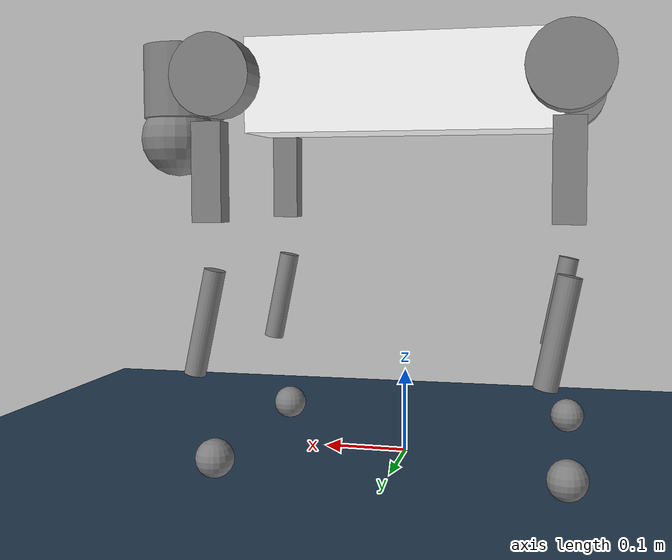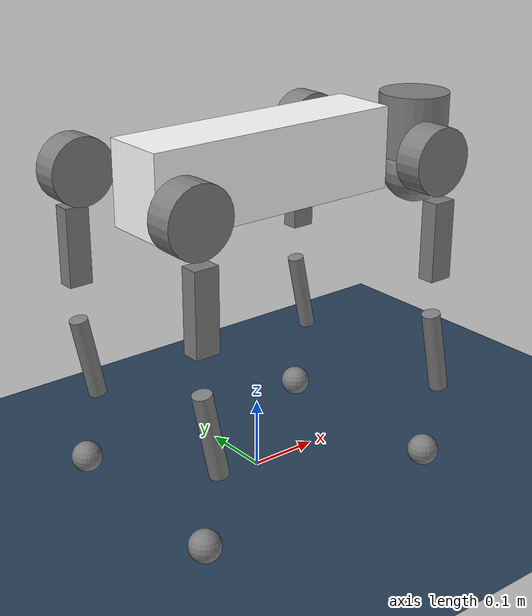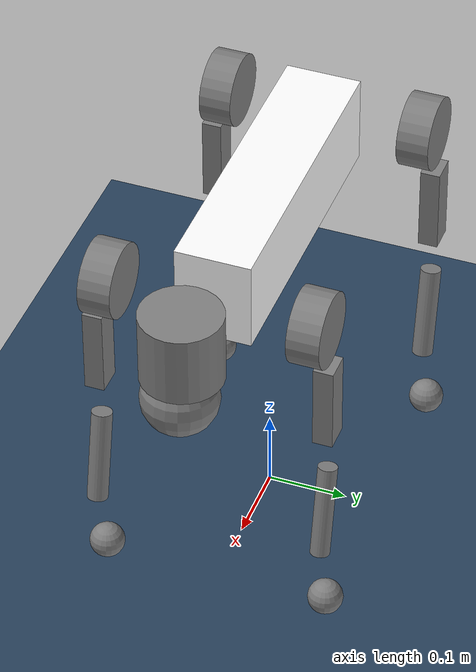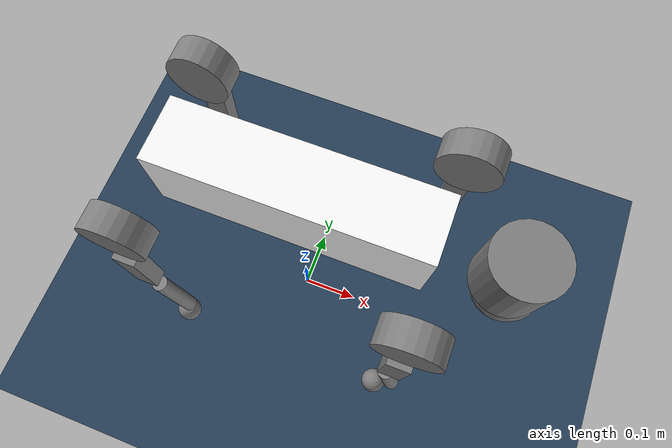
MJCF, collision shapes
<mujoco model="go2_description">
  <compiler angle="radian" meshdir="../mujoco_meshes/" autolimits="true"/>

  <option timestep="0.005" gravity="0 0 -9.81"/>

  <default>
    <joint damping="0.001" armature="0.01" frictionloss="0.1"/>
    <default class="visual">
      <geom type="mesh" contype="0" conaffinity="0" group="2"/>
    </default>
  </default>

  <asset>
    <mesh name="base" file="base.stl"/>
    <mesh name="hip" file="hip.stl"/>
    <mesh name="thigh" file="thigh.stl"/>
    <mesh name="calf" file="calf.stl"/>
    <mesh name="foot" file="foot.stl"/>
    <mesh name="thigh_mirror" file="thigh_mirror.stl"/>
    <mesh name="calf_mirror" file="calf_mirror.stl"/>
    <texture name="grid" type="2d" builtin="checker" rgb1=".1 .2 .3" rgb2=".2 .3 .4" width="300" height="300" mark="edge" markrgb=".8 .8 .8"/>
    <material name="grid_mat" texture="grid" texrepeat="2 2" texuniform="true"/>
  </asset>

  <worldbody>
    <geom name="floor" type="plane" size="0 0 .05" material="grid_mat" friction="1.0 0.005 0.0001"/>

    <body name="base" pos="0 0 0.445">
      <inertial pos="0.021112 0 -0.005366" quat="-0.000543471 0.713435 -0.00173769 0.700719"
        mass="6.921"
        diaginertia="0.107027 0.0980771 0.0244531" />
      <freejoint name="root"/> <geom type="mesh" contype="0" conaffinity="0" group="0" density="0" rgba="1 1 1 1" mesh="base"/>
      <geom name="base_box" size="0.1881 0.04675 0.057" type="box" rgba="1 1 1 1"/>
      <geom name="base_cyl1" size="0.05 0.045" pos="0.285 0 0.01" type="cylinder"/>
      <geom name="base_sphere1" size="0.047" pos="0.293 0 -0.06" type="sphere"/>

      <site name="imu_site" pos="-0.02557 0 0.04232"/>
      <camera name="front_depth_camera" pos="0.28 0 0" fovy="60" ipd="0.06"/>

      <body name="FL_hip" pos="0.1934 0.0465 0">
        <inertial pos="-0.0054 0.00194 -0.000105" quat="0.497014 0.499245 0.505462 0.498237" mass="0.678" diaginertia="0.00088403 0.000596003 0.000479967"/>
        <joint name="FL_hip_joint" pos="0 0 0" axis="1 0 0" range="-1.0472 1.0472"/>
        <geom type="mesh" class="visual" mesh="hip"/>
        <geom size="0.046 0.02" pos="0 0.08 0" quat="0.707107 0.707107 0 0" type="cylinder"/>
        <body name="FL_thigh" pos="0 0.0955 0">
          <inertial pos="-0.00374 -0.0223 -0.0327" quat="0.829533 0.0847635 -0.0200632 0.551623" mass="1.152" diaginertia="0.00594973 0.00584149 0.000878787"/>
          <joint name="FL_thigh_joint" pos="0 0 0" axis="0 1 0" range="-1.5708 3.4907"/>
          <geom type="mesh" class="visual" mesh="thigh"/>
          <geom size="0.055 0.01225 0.017" pos="0 0 -0.1065" quat="0.707107 0 0.707107 0" type="box"/>
          <body name="FL_calf" pos="0 0 -0.213">
            <site name="FL_foot_site" pos="0 0 -0.213" size="0.01"/>
            <inertial pos="0.00629595 -0.000622121 -0.141417" quat="0.710749 0.00140574 -0.00463741 0.703429" mass="0.241352" diaginertia="0.0014901 0.00146367 5.30286e-05"/>
            <joint name="FL_calf_joint" pos="0 0 0" axis="0 1 0" range="-2.7227 -0.83776"/>
            <geom type="mesh" class="visual" mesh="calf"/>
            <geom size="0.012 0.06" pos="0.008 0 -0.06" quat="0.994493 0 -0.104807 0" type="cylinder"/>
            <geom pos="0 0 -0.213" type="mesh" class="visual" mesh="foot"/>
            <geom size="0.022" pos="-0.002 0 -0.213" friction="0.8" condim="3"/>
          </body>
        </body>
      </body>

      <body name="FR_hip" pos="0.1934 -0.0465 0">
        <inertial pos="-0.0054 -0.00194 -0.000105" quat="0.498237 0.505462 0.499245 0.497014" mass="0.678" diaginertia="0.00088403 0.000596003 0.000479967"/>
        <joint name="FR_hip_joint" pos="0 0 0" axis="1 0 0" range="-1.0472 1.0472"/>
        <geom quat="4.63268e-05 1 0 0" type="mesh" class="visual" mesh="hip"/>
        <geom size="0.046 0.02" pos="0 -0.08 0" quat="0.707107 0.707107 0 0" type="cylinder"/>
        <body name="FR_thigh" pos="0 -0.0955 0">
          <inertial pos="-0.00374 0.0223 -0.0327" quat="0.551623 -0.0200632 0.0847635 0.829533" mass="1.152" diaginertia="0.00594973 0.00584149 0.000878787"/>
          <joint name="FR_thigh_joint" pos="0 0 0" axis="0 1 0" range="-1.5708 3.4907"/>
          <geom type="mesh" class="visual" mesh="thigh_mirror"/>
          <geom size="0.055 0.01225 0.017" pos="0 0 -0.1065" quat="0.707107 0 0.707107 0" type="box"/>
          <body name="FR_calf" pos="0 0 -0.213">
            <site name="FR_foot_site" pos="0 0 -0.213" size="0.01"/>
            <inertial pos="0.00629595 0.000622121 -0.141417" quat="0.703429 -0.00463741 0.00140574 0.710749" mass="0.241352" diaginertia="0.0014901 0.00146367 5.30286e-05"/>
            <joint name="FR_calf_joint" pos="0 0 0" axis="0 1 0" range="-2.7227 -0.83776"/>
            <geom type="mesh" class="visual" mesh="calf_mirror"/>
            <geom size="0.013 0.06" pos="0.01 0 -0.06" quat="0.995004 0 -0.0998334 0" type="cylinder"/>
            <geom pos="0 0 -0.213" type="mesh" class="visual" mesh="foot"/>
            <geom size="0.022" pos="-0.002 0 -0.213" friction="0.8" condim="3"/>
          </body>
        </body>
      </body>

      <body name="RL_hip" pos="-0.1934 0.0465 0">
        <inertial pos="0.0054 0.00194 -0.000105" quat="0.505462 0.498237 0.497014 0.499245" mass="0.678" diaginertia="0.00088403 0.000596003 0.000479967"/>
        <joint name="RL_hip_joint" pos="0 0 0" axis="1 0 0" range="-1.0472 1.0472"/>
        <geom quat="4.63268e-05 0 1 0" type="mesh" class="visual" mesh="hip"/>
        <geom size="0.046 0.02" pos="0 0.08 0" quat="0.707107 0.707107 0 0" type="cylinder"/>
        <body name="RL_thigh" pos="0 0.0955 0">
          <inertial pos="-0.00374 -0.0223 -0.0327" quat="0.829533 0.0847635 -0.0200632 0.551623" mass="1.152" diaginertia="0.00594973 0.00584149 0.000878787"/>
          <joint name="RL_thigh_joint" pos="0 0 0" axis="0 1 0" range="-0.5236 4.5379"/>
          <geom type="mesh" class="visual" mesh="thigh"/>
          <geom size="0.055 0.01225 0.017" pos="0 0 -0.1065" quat="0.707107 0 0.707107 0" type="box"/>
          <body name="RL_calf" pos="0 0 -0.213">
            <site name="RL_foot_site" pos="0 0 -0.213" size="0.01"/>
            <inertial pos="0.00629595 -0.000622121 -0.141417" quat="0.710749 0.00140574 -0.00463741 0.703429" mass="0.241352" diaginertia="0.0014901 0.00146367 5.30286e-05"/>
            <joint name="RL_calf_joint" pos="0 0 0" axis="0 1 0" range="-2.7227 -0.83776"/>
            <geom type="mesh" class="visual" mesh="calf"/>
            <geom size="0.013 0.06" pos="0.01 0 -0.06" quat="0.995004 0 -0.0998334 0" type="cylinder"/>
            <geom pos="0 0 -0.213" type="mesh" class="visual" mesh="foot"/>
            <geom size="0.022" pos="-0.002 0 -0.213" friction="0.8" condim="3"/>
          </body>
        </body>
      </body>

      <body name="RR_hip" pos="-0.1934 -0.0465 0">
        <inertial pos="0.0054 -0.00194 -0.000105" quat="0.499245 0.497014 0.498237 0.505462" mass="0.678" diaginertia="0.00088403 0.000596003 0.000479967"/>
        <joint name="RR_hip_joint" pos="0 0 0" axis="1 0 0" range="-1.0472 1.0472"/>
        <geom quat="2.14617e-09 4.63268e-05 4.63268e-05 -1" type="mesh" class="visual" mesh="hip"/>
        <geom size="0.046 0.02" pos="0 -0.08 0" quat="0.707107 0.707107 0 0" type="cylinder"/>
        <body name="RR_thigh" pos="0 -0.0955 0">
          <inertial pos="-0.00374 0.0223 -0.0327" quat="0.551623 -0.0200632 0.0847635 0.829533" mass="1.152" diaginertia="0.00594973 0.00584149 0.000878787"/>
          <joint name="RR_thigh_joint" pos="0 0 0" axis="0 1 0" range="-0.5236 4.5379"/>
          <geom type="mesh" class="visual" mesh="thigh_mirror"/>
          <geom size="0.055 0.01225 0.017" pos="0 0 -0.1065" quat="0.707107 0 0.707107 0" type="box"/>
          <body name="RR_calf" pos="0 0 -0.213">
            <site name="RR_foot_site" pos="0 0 -0.213" size="0.01"/>
            <inertial pos="0.00629595 0.000622121 -0.141417" quat="0.703429 -0.00463741 0.00140574 0.710749" mass="0.241352" diaginertia="0.0014901 0.00146367 5.30286e-05"/>
            <joint name="RR_calf_joint" pos="0 0 0" axis="0 1 0" range="-2.7227 -0.83776"/>
            <geom type="mesh" class="visual" mesh="calf_mirror"/>
            <geom size="0.013 0.06" pos="0.01 0 -0.06" quat="0.995004 0 -0.0998334 0" type="cylinder"/>
            <geom pos="0 0 -0.213" type="mesh" class="visual" mesh="foot"/>
            <geom size="0.022" pos="-0.002 0 -0.213" friction="0.8" condim="3"/>
          </body>
        </body>
      </body>
    </body>
  </worldbody>

  <sensor>
    <gyro name="gyro" site="imu_site"/>
    <accelerometer name="accelerometer" site="imu_site"/>
    <touch name="FL_touch" site="FL_foot_site"/>
    <touch name="FR_touch" site="FR_foot_site"/>
    <touch name="RL_touch" site="RL_foot_site"/>
    <touch name="RR_touch" site="RR_foot_site"/>
  </sensor>

  <actuator>
    <motor name="FL_hip" joint="FL_hip_joint" ctrlrange="-23.7 23.7" ctrllimited="true"/>
    <motor name="FL_thigh" joint="FL_thigh_joint" ctrlrange="-23.7 23.7" ctrllimited="true"/>
    <motor name="FL_calf" joint="FL_calf_joint" ctrlrange="-45.43 45.43" ctrllimited="true"/>

    <motor name="FR_hip" joint="FR_hip_joint" ctrlrange="-23.7 23.7" ctrllimited="true"/>
    <motor name="FR_thigh" joint="FR_thigh_joint" ctrlrange="-23.7 23.7" ctrllimited="true"/>
    <motor name="FR_calf" joint="FR_calf_joint" ctrlrange="-45.43 45.43" ctrllimited="true"/>

    <motor name="RL_hip" joint="RL_hip_joint" ctrlrange="-23.7 23.7" ctrllimited="true"/>
    <motor name="RL_thigh" joint="RL_thigh_joint" ctrlrange="-23.7 23.7" ctrllimited="true"/>
    <motor name="RL_calf" joint="RL_calf_joint" ctrlrange="-45.43 45.43" ctrllimited="true"/>

    <motor name="RR_hip" joint="RR_hip_joint" ctrlrange="-23.7 23.7" ctrllimited="true"/>
    <motor name="RR_thigh" joint="RR_thigh_joint" ctrlrange="-23.7 23.7" ctrllimited="true"/>
    <motor name="RR_calf" joint="RR_calf_joint" ctrlrange="-45.43 45.43" ctrllimited="true"/>
  </actuator>
</mujoco>
